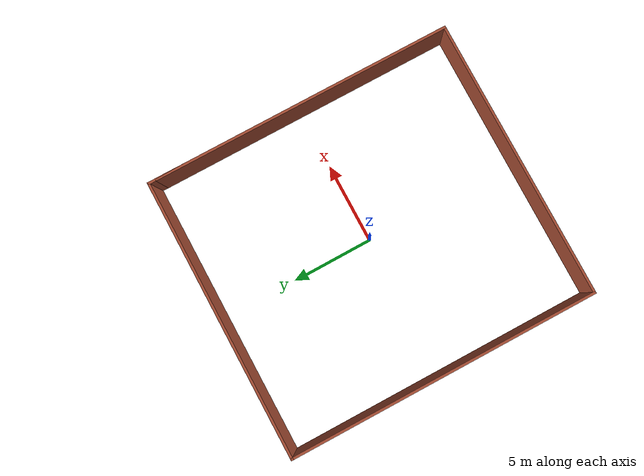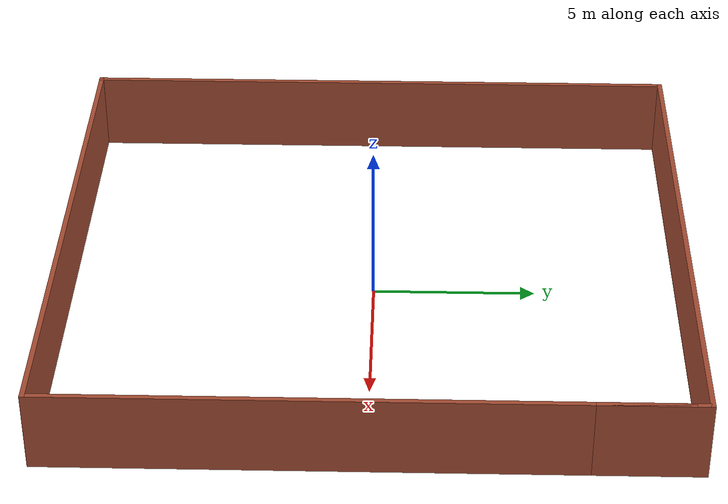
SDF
<?xml version='1.0'?>
<sdf version='1.7'>
  <model name='main'>
    <pose>-0.051929 0.037415 0 0 -0 0</pose>
    <link name='Wall_0'>
      <collision name='Wall_0_Collision'>
        <geometry>
          <box>
            <size>19 0.15 2.5</size>
          </box>
        </geometry>
        <pose>0 0 1.25 0 -0 0</pose>
      </collision>
      <visual name='Wall_0_Visual'>
        <pose>0 0 1.25 0 -0 0</pose>
        <geometry>
          <box>
            <size>19 0.15 2.5</size>
          </box>
        </geometry>
        <material>
          <script>
            <uri>file://media/materials/scripts/gazebo.material</uri>
            <name>Gazebo/Bricks</name>
          </script>
          <ambient>1 1 1 1</ambient>
        </material>
        <meta>
          <layer>0</layer>
        </meta>
      </visual>
      <pose>-8.55 -0.02824 0 0 -0 -1.5708</pose>
    </link>

    <link name='Wall_2'>
      <collision name='Wall_2_Collision'>
        <geometry>
          <box>
            <size>17.25 0.15 2.5</size>
          </box>
        </geometry>
        <pose>0 0 1.25 0 -0 0</pose>
      </collision>
      <visual name='Wall_2_Visual'>
        <pose>0 0 1.25 0 -0 0</pose>
        <geometry>
          <box>
            <size>17.25 0.15 2.5</size>
          </box>
        </geometry>
        <material>
          <script>
            <uri>file://media/materials/scripts/gazebo.material</uri>
            <name>Gazebo/Bricks</name>
          </script>
          <ambient>1 1 1 1</ambient>
        </material>
        <meta>
          <layer>0</layer>
        </meta>
      </visual>
      <pose>-0 -9.45324 0 0 -0 0</pose>
    </link>
    <link name='Wall_3'>
      <collision name='Wall_3_Collision'>
        <geometry>
          <box>
            <size>18.5 0.15 2.5</size>
          </box>
        </geometry>
        <pose>0 0 1.25 0 -0 0</pose>
      </collision>
      <visual name='Wall_3_Visual'>
        <pose>0 0 1.25 0 -0 0</pose>
        <geometry>
          <box>
            <size>18.5 0.15 2.5</size>
          </box>
        </geometry>
        <material>
          <script>
            <uri>file://media/materials/scripts/gazebo.material</uri>
            <name>Gazebo/Bricks</name>
          </script>
          <ambient>1 1 1 1</ambient>
        </material>
        <meta>
          <layer>0</layer>
        </meta>
      </visual>
      <pose>8.55 -0.27824 0 0 -0 1.5708</pose>
    </link>
    <link name='Wall_5'>
      <collision name='Wall_5_Collision'>
        <geometry>
          <box>
            <size>17.25 0.15 2.5</size>
          </box>
        </geometry>
        <pose>0 0 1.25 0 -0 0</pose>
      </collision>
      <visual name='Wall_5_Visual'>
        <pose>0 0 1.25 0 -0 0</pose>
        <geometry>
          <box>
            <size>17.25 0.15 2.5</size>
          </box>
        </geometry>
        <material>
          <script>
            <uri>file://media/materials/scripts/gazebo.material</uri>
            <name>Gazebo/Bricks</name>
          </script>
          <ambient>1 1 1 1</ambient>
        </material>
        <meta>
          <layer>0</layer>
        </meta>
      </visual>
      <pose>-0 9.39676 0 0 -0 0</pose>
    </link>
    <link name='Wall_6'>
      <collision name='Wall_6_Collision'>
        <geometry>
          <box>
            <size>3.25 0.15 2.5</size>
          </box>
        </geometry>
        <pose>0 0 1.25 0 -0 0</pose>
      </collision>
      <visual name='Wall_6_Visual'>
        <pose>0 0 1.25 0 -0 0</pose>
        <geometry>
          <box>
            <size>3.25 0.15 2.5</size>
          </box>
        </geometry>
        <material>
          <script>
            <uri>file://media/materials/scripts/gazebo.material</uri>
            <name>Gazebo/Bricks</name>
          </script>
          <ambient>1 1 1 1</ambient>
        </material>
        <meta>
          <layer>0</layer>
        </meta>
      </visual>
      <pose>8.55 7.84676 0 0 -0 -1.5708</pose>
    </link>
    <static>1</static>
  </model>
</sdf>
